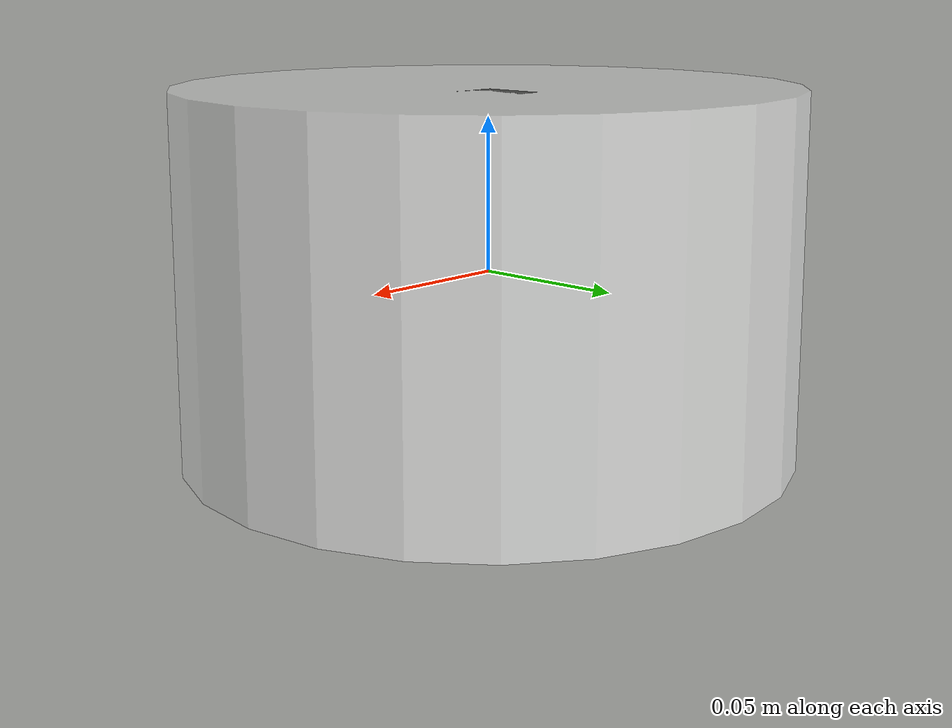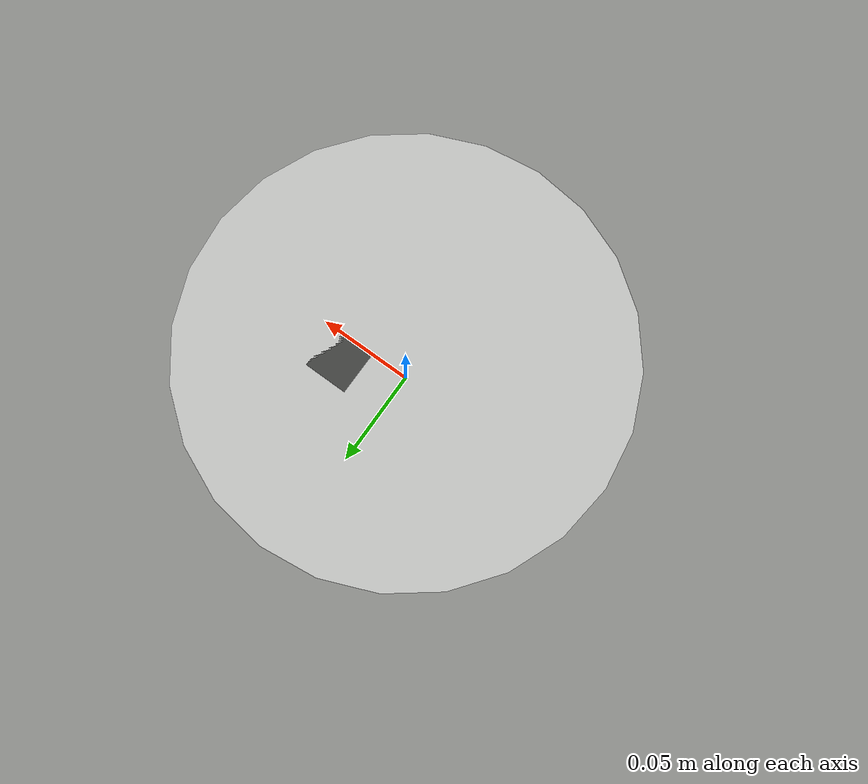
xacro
<?xml version="1.0"?>
<robot xmlns:xacro="http://www.ros.org/wiki/xacro" name="hello_robot">
    <xacro:macro name="base_link" params="length radius">
        <link name="base_link">
        <visual>
            <!-- 沿着自己几何中心的偏移和旋转量 -->
            <origin xyz="0.0 0.0 0.0" rpy="0.0 0.0 0.0" />
            <geometry>
                <cylinder radius="${radius}" length="${length}"/>
            </geometry>
            <material name="white">
                <color rgba="1.0 1.0 1.0 0.5"/>
            </material>
        </visual>
     </link>
    </xacro:macro>
    <xacro:macro name="imu_link" params="imu_name xyz">
        <link name="${imu_name}">
        <visual>
            <!-- 沿着自己几何中心的偏移和旋转量 -->
            <origin xyz="0.02 0.02 0.02" rpy="0.0 0.0 0.0" />
            <geometry>
                <box size="0.02 0.02 0.02"/>
            </geometry>
            <material name="black">
                <color rgba="0.0 0.0 0.0 0.5"/>
            </material>
        </visual>
     </link>
     <joint name="${imu_name}_joint" type="fixed">
        <parent link="base_link"/>
        <child link="${imu_name}"/>
        <origin xyz="${xyz}" rpy="0.0 0.0 0.0"/>
     </joint>
    </xacro:macro>
    <xacro:base_link length="0.12" radius="0.1"/>
    <xacro:imu_link imu_name="imu_up" xyz="0.0 0.0 0.03"/>
    <xacro:imu_link imu_name="imu_down" xyz="0.0 0.0 -0.03"/>
</robot>
